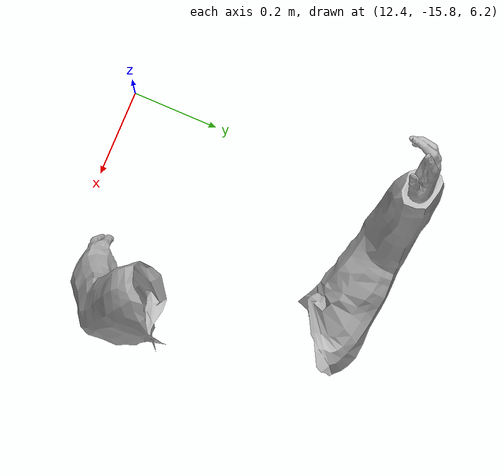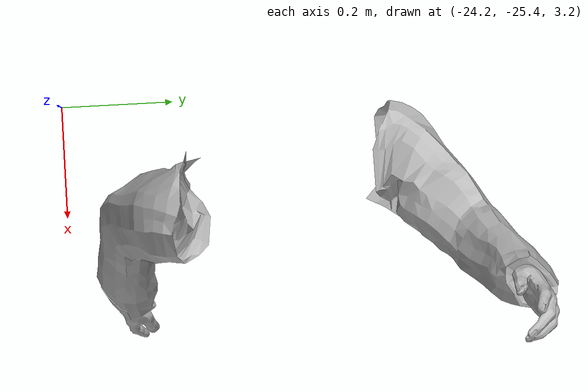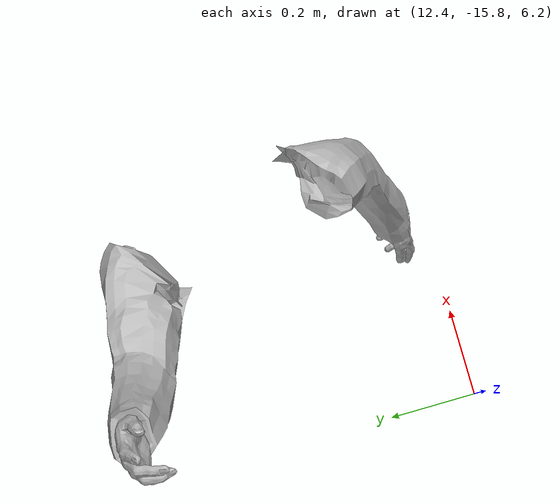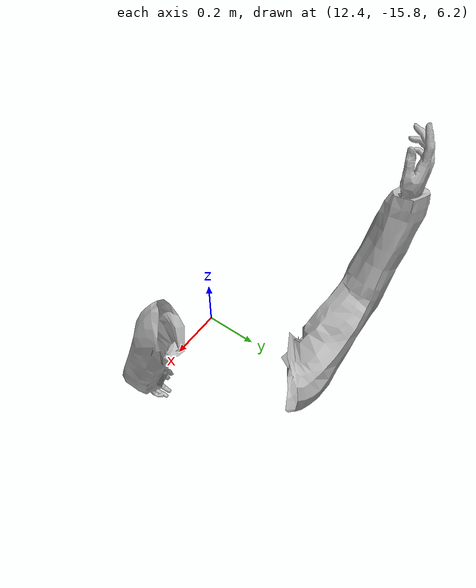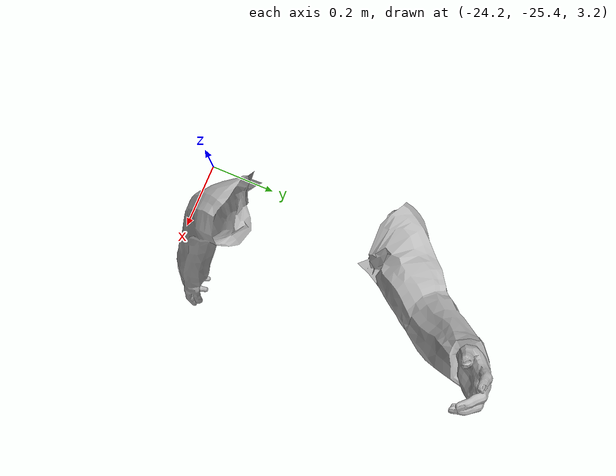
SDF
<sdf version="1.5">
 <world name="default">
  <spherical_coordinates>
   <surface_model>EARTH_WGS84</surface_model>
   <latitude_deg>37.411802</latitude_deg>
   <longitude_deg>-121.995739</longitude_deg>
   <elevation>0.0</elevation>
   <heading_deg>0</heading_deg>
  </spherical_coordinates>
  <physics name="default_physics" default="0" type="ode">
   <gravity>0 0 -9.8066</gravity>
   <ode>
    <solver>
     <type>quick</type>
     <iters>10</iters>
     <sor>1.3</sor>
     <use_dynamic_moi_rescaling>0</use_dynamic_moi_rescaling>
    </solver>
    <constraints>
     <cfm>0</cfm>
     <erp>0.2</erp>
     <contact_max_correcting_vel>1000</contact_max_correcting_vel>
     <contact_surface_layer>0.001</contact_surface_layer>
    </constraints>
   </ode>
   <max_step_size>0.004</max_step_size>
   <real_time_factor>1</real_time_factor>
   <real_time_update_rate>250</real_time_update_rate>
   <magnetic_field>6.0e-06 2.3e-05 -4.2e-05</magnetic_field>
  </physics>
  <scene><shadows>false</shadows></scene>
  <light type="directional" name="sun">
   <pose>250 250 600 0 0 0</pose>
   <diffuse>0.8 0.8 0.8 1</diffuse>
   <specular>0.2 0.2 0.2 1</specular>
   <attenuation>
    <range>1000</range>
    <constant>0.9</constant>
    <linear>0.01</linear>
    <quadratic>0.001</quadratic>
   </attenuation>
   <direction>0 0 -1</direction>
  </light>
  <model name="ground_plane">
   <static>true</static>
   <link name="link">
    <collision name="collision">
     <geometry><plane><normal>0 0 1</normal><size>250 250</size></plane></geometry>
     <surface><friction><ode><mu>1</mu><mu2>1</mu2></ode></friction></surface>
    </collision>
   </link>
  </model>
  <model name="jeff_electrician_right_right_arm">
   <pose>-23.9473  -25.0051  2.5300 0 0 0.2618</pose>
   <gravity>0</gravity>
   <static>true</static>
   <link name="link">
    <visual name="visual">
     <cast_shadows>false</cast_shadows>
     <geometry>
      <mesh><uri>file://jeff_electrician_modular/jeff_right_arm.dae</uri><scale>0.75 0.75 0.75</scale></mesh>
     </geometry>
    </visual>
    <collision name="collision">
     <geometry>
      <mesh><uri>file://jeff_electrician_modular/jeff_right_arm.dae</uri><scale>0.75 0.75 0.75</scale></mesh>
     </geometry>
    </collision>
   </link>
  </model>
  <model name="jeff_electrician_right_left_arm">
   <pose>-23.1475  -24.7505  4.9300 -3.14 -0.7990 -2.8797</pose>
   <gravity>0</gravity>
   <static>true</static>
   <link name="link">
    <visual name="visual">
     <cast_shadows>false</cast_shadows>
     <geometry>
      <mesh><uri>file://jeff_electrician_modular/jeff_left_arm.dae</uri><scale>0.75 0.75 0.75</scale></mesh>
     </geometry>
    </visual>
    <collision name="collision">
     <geometry>
      <mesh><uri>file://jeff_electrician_modular/jeff_left_arm.dae</uri><scale>0.75 0.75 0.75</scale></mesh>
     </geometry>
    </collision>
   </link>
  </model>
  <model name="jeff_electrician_left_right_arm">
   <pose>11.9468  -15.5770  7.9169 -3.14 -0.7990 0.2618</pose>
   <gravity>0</gravity>
   <static>true</static>
   <link name="link">
    <visual name="visual">
     <cast_shadows>false</cast_shadows>
     <geometry>
      <mesh><uri>file://jeff_electrician_modular/jeff_right_arm.dae</uri><scale>0.75 0.75 0.75</scale></mesh>
     </geometry>
    </visual>
    <collision name="collision">
     <geometry>
      <mesh><uri>file://jeff_electrician_modular/jeff_right_arm.dae</uri><scale>0.75 0.75 0.75</scale></mesh>
     </geometry>
    </collision>
   </link>
  </model>
  <model name="jeff_electrician_left_left_arm">
   <pose>12.7472  -15.4104  5.5000 0 0 3.4034</pose>
   <gravity>0</gravity>
   <static>true</static>
   <link name="link">
    <visual name="visual">
     <cast_shadows>false</cast_shadows>
     <geometry>
      <mesh><uri>file://jeff_electrician_modular/jeff_left_arm.dae</uri><scale>0.75 0.75 0.75</scale></mesh>
     </geometry>
    </visual>
    <collision name="collision">
     <geometry>
      <mesh><uri>file://jeff_electrician_modular/jeff_left_arm.dae</uri><scale>0.75 0.75 0.75</scale></mesh>
     </geometry>
    </collision>
   </link>
  </model>
  <plugin name="mrs_gazebo_rviz_cam_synchronizer" filename="libMRSGazeboRvizCameraSynchronizer.so">
   <target_frame_id>gazebo_user_camera</target_frame_id>
   <world_origin_frame_id>uav1/rtk_origin</world_origin_frame_id>
   <frame_to_follow>uav1::base_link</frame_to_follow>
  </plugin>
 </world>
</sdf>
